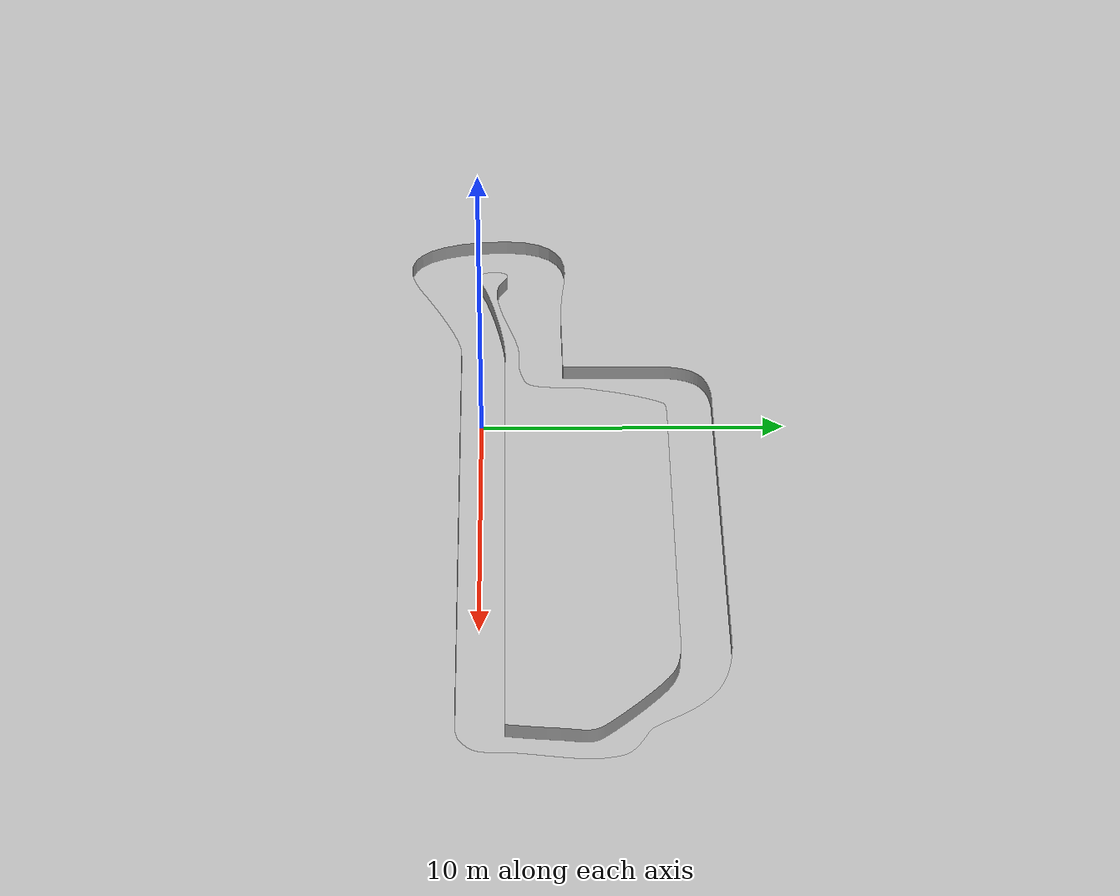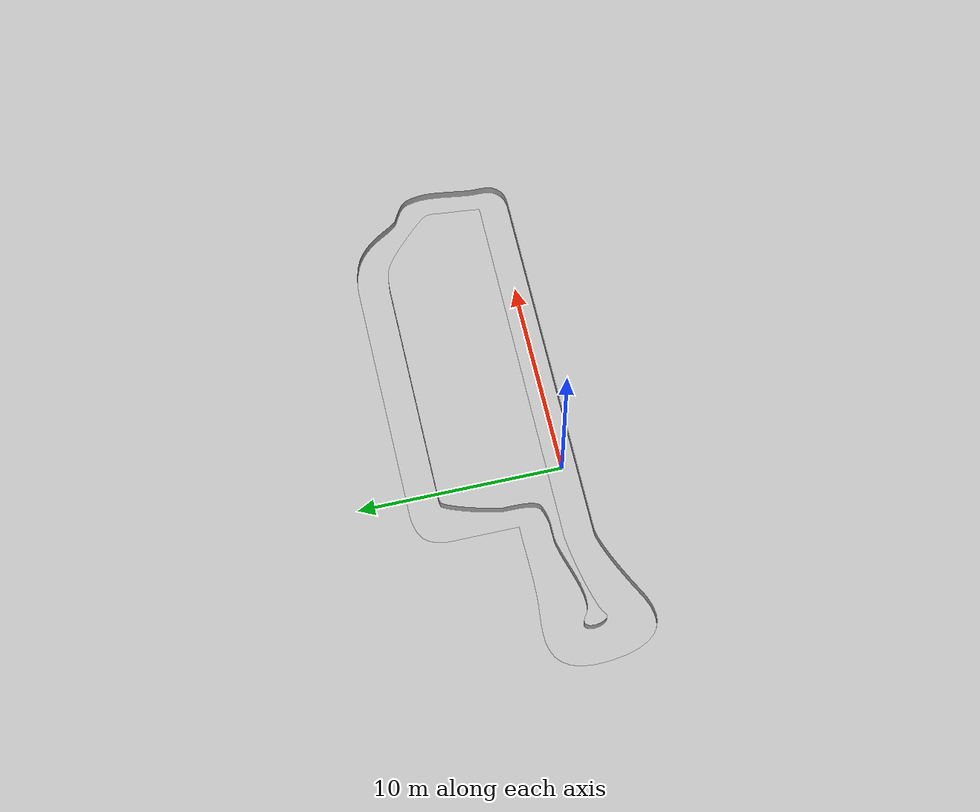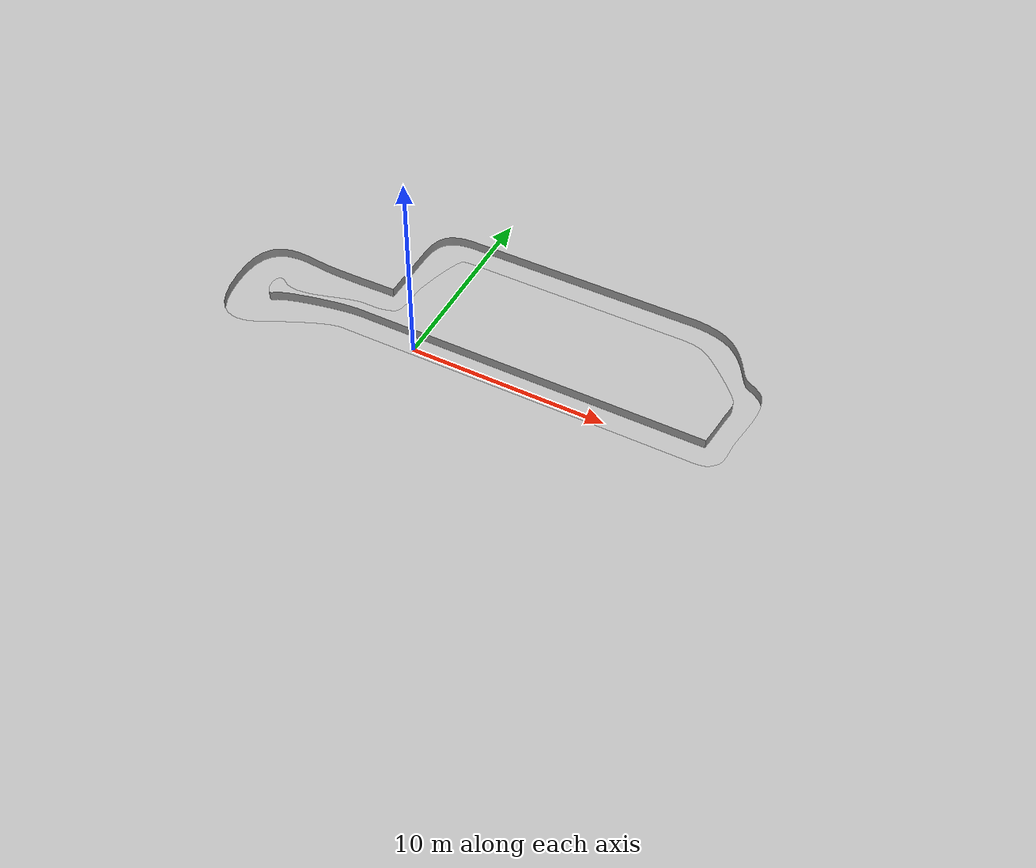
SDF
<?xml version="1.0" encoding="UTF-8"?>
<sdf version="1.6">
  <world name="treitlstrasse_v2">
    <gravity>0 0 -9.8</gravity>
    <model name="walls">
      <static>1</static>
      <pose frame="">0 0 0 0 0 0</pose>
      <link name="link_d0">
        <inertial>
          <mass>0</mass>
          <inertia>
            <ixx>0.166667</ixx>
            <ixy>0</ixy>
            <ixz>0</ixz>
            <iyy>0.166667</iyy>
            <iyz>0</iyz>
            <izz>0.166667</izz>
          </inertia>
        </inertial>
        <collision concave="yes" name="collision_0">
          <geometry>
            <mesh>
              <scale>1 1 1</scale>
              <uri>meshes/Walls.obj</uri>
            </mesh>
          </geometry>
        </collision>
        <visual name="visual">
          <geometry>
            <mesh>
              <scale>1 1 1</scale>
              <uri>meshes/Walls.obj</uri>
            </mesh>
          </geometry>
        </visual>
      </link>
    </model>
    <model name="floor">
      <static>1</static>
      <pose frame="">0 0 0 0 0 0</pose>
      <link name="link_d0">
        <inertial>
          <mass>0</mass>
          <inertia>
            <ixx>0.166667</ixx>
            <ixy>0</ixy>
            <ixz>0</ixz>
            <iyy>0.166667</iyy>
            <iyz>0</iyz>
            <izz>0.166667</izz>
          </inertia>
        </inertial>
        <collision concave="yes" name="collision_0">
          <geometry>
            <mesh>
              <scale>1 1 1</scale>
              <uri>meshes/Floor.obj</uri>
            </mesh>
          </geometry>
        </collision>
        <visual name="visual">
          <geometry>
            <mesh>
              <scale>1 1 1</scale>
              <uri>meshes/Floor.obj</uri>
            </mesh>
          </geometry>
        </visual>
      </link>
    </model>
  </world>
</sdf>
